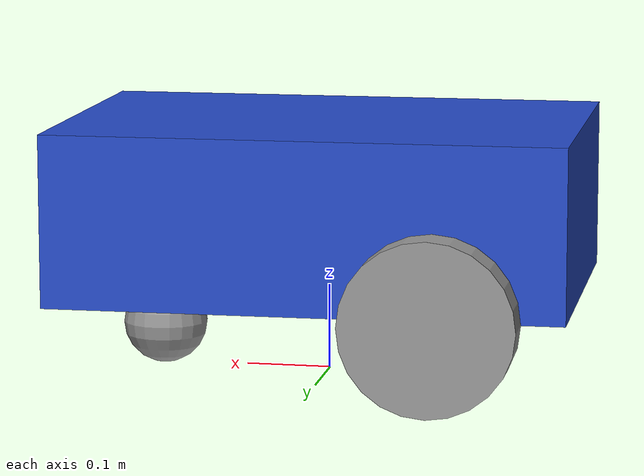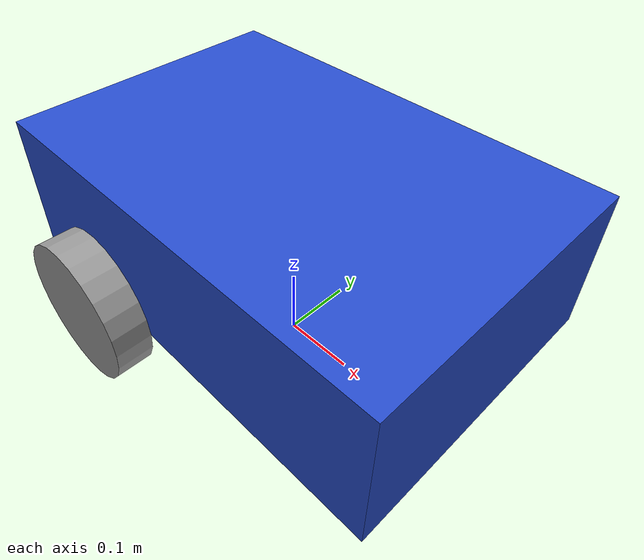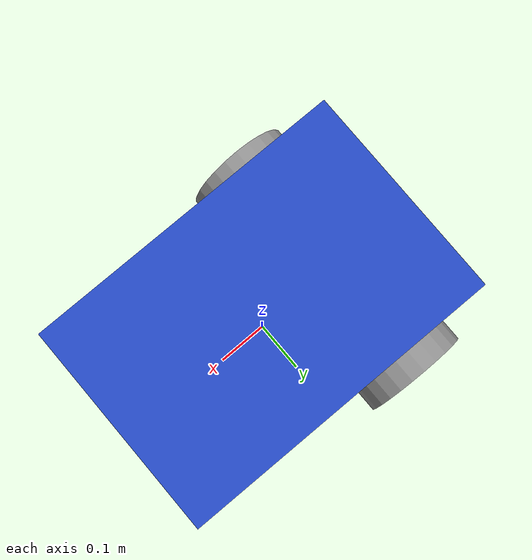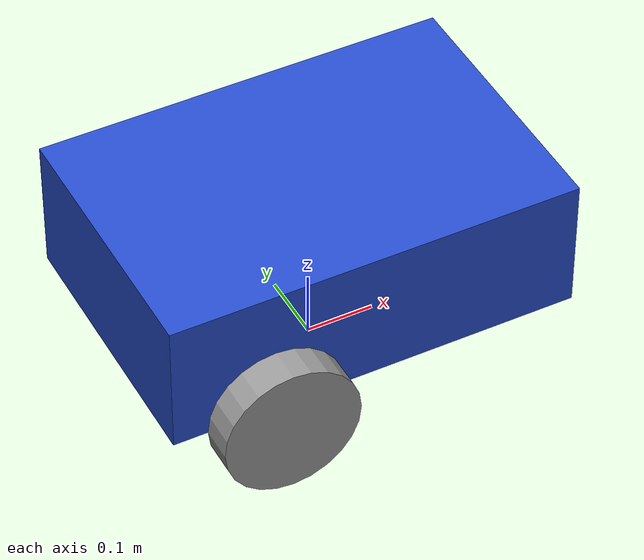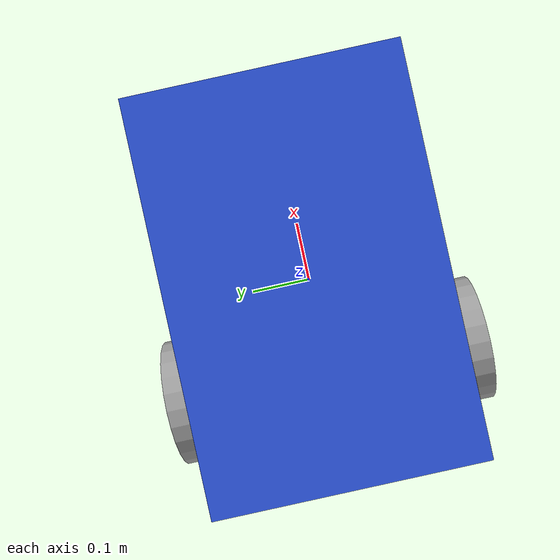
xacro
<?xml version="1.0"?>
<robot xmlns:xacro="http://www.ros.org/wiki/xacro" >

    <xacro:property name="base_length" value="0.6" />
    <xacro:property name="base_width" value="0.4" />
    <xacro:property name="base_height" value="0.2" />
    <xacro:property name="wheel_radius" value="0.1" />
    <xacro:property name="wheel_length" value="0.05" />
    <xacro:property name="scan_wheel_length" value="0.06" />
    <xacro:property name="imu_length" value="0.05" />

    <link name="base_footprint" />

    <!-- BASE LINK -->
    <link name="base_link">
        <visual>
            <geometry>
                <box size="${base_length} ${base_width} ${base_height}"/>
            </geometry>
            <origin xyz="0 0 0.1" rpy="0 0 0" />
            <material name="blue" />
        </visual>
        <collision>
            <geometry>
                <box size="${base_length} ${base_width} ${base_height}"/>
            </geometry>
            <origin xyz="0 0 0.1" rpy="0 0 0" />
        </collision>
        <xacro:box_inertia m="5.0" l="${3*base_length}" w="${3*base_width}" h="${3*base_height}"
                           xyz="0 0 0.1" rpy="0 0 0" />
    </link>

    <!-- DEFINE THE IMU LINK  -->
    <link name= "imu_link" >
        <visual>
            <geometry>
                <box size="0.05 0.05 0.05"/>
            </geometry>
            <origin xyz="0 0 0" rpy="0 0 0" />
            <material name="orange"/>
        </visual>
        <collision>
            <geometry>
                <box size="${imu_length} ${imu_length} ${imu_length}" />
            </geometry>
            <origin xyz="0 0 0.15   " rpy="0 0 0"/>
        </collision>
        <xacro:box_inertia m="0.25" l="${2*imu_length}" w="${2*imu_length}" h="${2*imu_length}"
                           xyz="0 0 0.1" rpy="0 0 0" />
    </link>

    <!-- To add Lidar JOint  -->

    <!-- WHEEL LINK -->
    <xacro:macro name="wheel_link" params="prefix">
        <link name="${prefix}_wheel_link">
            <visual>
                <geometry>
                    <cylinder radius="${wheel_radius}" length="${wheel_length}" />
                </geometry>
                <origin xyz="0 0 0" rpy="${pi / 2.0} 0 0" />
                <material name="grey" />
            </visual>
            <collision>
                <geometry>
                    <cylinder radius="${wheel_radius}" length="${wheel_length}" />
                </geometry>
                <origin xyz="0 0 0" rpy="${pi / 2.0} 0 0" />
            </collision>
            <xacro:wheel_inertia m="1.0" r="${3*wheel_radius}" h="${3*wheel_length}"
                                 xyz="0 0 0" rpy="${pi / 2.0} 0 0" />
        </link>
    </xacro:macro>

    <xacro:wheel_link prefix="right"/>
    <xacro:wheel_link prefix="left" />

    <link name="caster_wheel_link">
        <visual>
            <geometry>
                <sphere radius="${wheel_length}" />
            </geometry>
            <origin xyz="0 0 0" rpy="0 0 0"/>
            <material name="grey" />
        </visual>
        <collision>
            <geometry>
                <sphere radius="${wheel_length}" />
            </geometry>
            <origin xyz="0 0 0" rpy="0 0 0"/>
        </collision>
        <xacro:castor_wheel_inertia m="0.5" r="${3*wheel_length}"
                                    xyz="0 0 0" rpy="0 0 0" />
    </link>

    <joint name="base_joint" type="fixed">
        <parent link="base_footprint" />
        <child link="base_link" />
        <origin xyz="0 0 ${wheel_radius}" rpy="0 0 0" />
    </joint>

    <joint name="base_right_wheel_joint" type="continuous">
        <parent link="base_link" />
        <child link="right_wheel_link" />
        <origin xyz="${-base_length / 4.0} ${-(base_width + wheel_length) / 2.0} 0" rpy="0 0 0" />
        <axis xyz="0 1 0" />
    </joint>

    <joint name="base_left_wheel_joint" type="continuous">
        <parent link="base_link" />
        <child link="left_wheel_link" />
        <origin xyz="${-base_length / 4.0} ${(base_width + wheel_length) / 2.0} 0" rpy="0 0 0" />
        <axis xyz="0 1 0" />
    </joint>

    <joint name="base_caster_wheel_joint" type="fixed" >
        <parent link="base_link" />
        <child link="caster_wheel_link" />
        <origin xyz="${base_length / 3.0} 0 ${-wheel_length}" rpy="0 0 0"/>
        <axis xyz="0 1 0"/>
    </joint>

    <joint name="base_imu_link" type="fixed">
        <parent link="base_link" />
        <child link="imu_link"/>
        <origin xyz="0 0 0.15" rpy="0 0 0" />
    </joint>

</robot>
